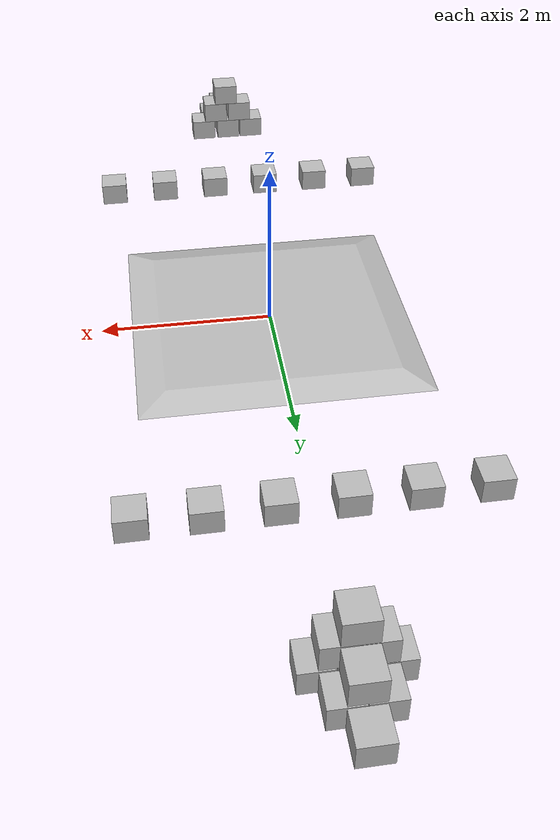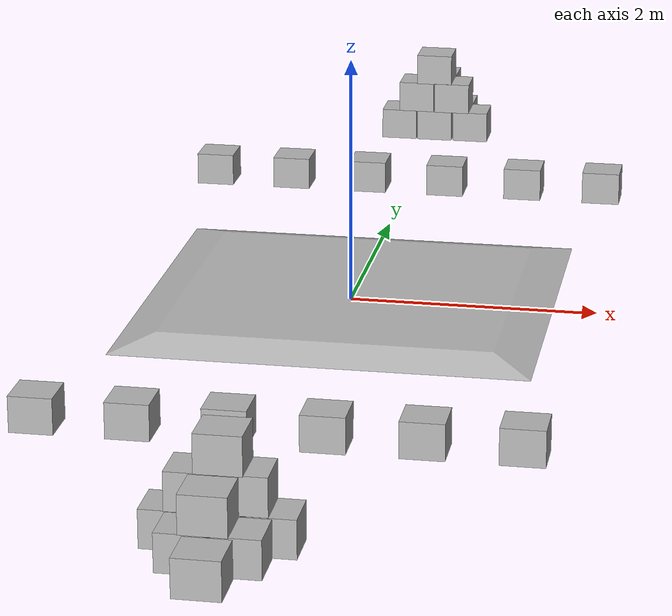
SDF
<sdf version='1.6'>
  <world name='default'>

    <light name='sun' type='directional'>
      <cast_shadows>1</cast_shadows>
      <pose>0 0 10 0 -0 0</pose>
      <diffuse>0.8 0.8 0.8 1</diffuse>
      <specular>0.2 0.2 0.2 1</specular>
      <attenuation>
        <range>1000</range>
        <constant>0.9</constant>
        <linear>0.01</linear>
        <quadratic>0.001</quadratic>
      </attenuation>
      <direction>-0.5 0.1 -0.9</direction>
    </light>
    <gravity>0 0 -9.8</gravity>
    <magnetic_field>6e-06 2.3e-05 -4.2e-05</magnetic_field>
    <atmosphere type='adiabatic'/>
    <physics name='default_physics' default='0' type='ode'>
      <max_step_size>0.001</max_step_size>
      <real_time_factor>1</real_time_factor>
      <!-- Adjust sim speed here -->
      <real_time_update_rate>1000</real_time_update_rate>
    </physics>
    <scene>
      <ambient>0.1 0.1 0.1 1</ambient>
      <background>0.7 0.7 0.7 1</background>
      <shadows>1</shadows>
    </scene>
    <wind/>
    <spherical_coordinates>
      <surface_model>EARTH_WGS84</surface_model>
      <latitude_deg>0</latitude_deg>
      <longitude_deg>0</longitude_deg>
      <elevation>0</elevation>
      <heading_deg>0</heading_deg>
    </spherical_coordinates>
    <light name='point_light_0' type='point'>
      <pose>0 -5 4 0 -0 0</pose>
      <diffuse>0.5 0.5 0.5 1</diffuse>
      <specular>0.1 0.1 0.1 1</specular>
      <attenuation>
        <range>20</range>
        <constant>0.5</constant>
        <linear>0.01</linear>
        <quadratic>0.001</quadratic>
      </attenuation>
      <cast_shadows>0</cast_shadows>
      <direction>0 0 -1</direction>
    </light>
    <light name='point_light_1' type='point'>
      <pose>0 5 4 0 -0 0</pose>
      <diffuse>0.5 0.5 0.5 1</diffuse>
      <specular>0.1 0.1 0.1 1</specular>
      <attenuation>
        <range>20</range>
        <constant>0.5</constant>
        <linear>0.01</linear>
        <quadratic>0.001</quadratic>
      </attenuation>
      <cast_shadows>0</cast_shadows>
      <direction>0 0 -1</direction>
    </light>

    <include>
      <name>frc2018_field</name>
      <uri>model://Gazebo2018/frc2018_field</uri>
      <pose>0 0 0 0 0 0</pose>
    </include>
    <include>
      <name>frc2018_cube_0</name>
      <uri>model://Gazebo2018/frc2018_cube</uri>
      <pose>-0.373569 -4.84169 0 0 -0 0</pose>
    </include>
    <include>
      <name>frc2018_cube_1</name>
      <uri>model://Gazebo2018/frc2018_cube</uri>
      <pose>-0.024527 -4.8416 0 0 -0 0</pose>
    </include>
    <include>
      <name>frc2018_cube_2</name>
      <uri>model://Gazebo2018/frc2018_cube</uri>
      <pose>0.349051 -4.84024 0 0 -0 0</pose>
    </include>
    <include>
      <name>frc2018_cube_3</name>
      <uri>model://Gazebo2018/frc2018_cube</uri>
      <pose>-0.189151 -5.18445 0 0 -0 0</pose>
    </include>
    <include>
      <name>frc2018_cube_4</name>
      <uri>model://Gazebo2018/frc2018_cube</uri>
      <pose>0.189151 -5.18445 0 0 -0 0</pose>
    </include>
    <include>
      <name>frc2018_cube_5</name>
      <uri>model://Gazebo2018/frc2018_cube</uri>
      <pose>0.005817 -5.53622 0 0 -0 0</pose>
    </include>
    <include>
      <name>frc2018_cube_6</name>
      <uri>model://Gazebo2018/frc2018_cube</uri>
      <pose>0.161782 -4.84 0.28 0 -0 0</pose>
    </include>
    <include>
      <name>frc2018_cube_7</name>
      <uri>model://Gazebo2018/frc2018_cube</uri>
      <pose>-0.2 -4.84654 0.278 0 -0 0</pose>
    </include>
    <include>
      <name>frc2018_cube_8</name>
      <uri>model://Gazebo2018/frc2018_cube</uri>
      <pose>-0.0274 -5.19091 0.278 0 -0 0</pose>
    </include>
    <include>
      <name>frc2018_cube_9</name>
      <uri>model://Gazebo2018/frc2018_cube</uri>
      <pose>0 -4.85 0.556 0 -0 0</pose>
    </include>
    <include>
      <name>frc2018_cube_10</name>
      <uri>model://Gazebo2018/frc2018_cube</uri>
      <pose>1.77 -3.07 0 0 -0 0</pose>
    </include>
    <include>
      <name>frc2018_cube_11</name>
      <uri>model://Gazebo2018/frc2018_cube</uri>
      <pose>-1.77 -3.07 0 0 -0 0</pose>
    </include>
    <include>
      <name>frc2018_cube_12</name>
      <uri>model://Gazebo2018/frc2018_cube</uri>
      <pose>1.062 -3.07 0 0 -0 0</pose>
    </include>
    <include>
      <name>frc2018_cube_13</name>
      <uri>model://Gazebo2018/frc2018_cube</uri>
      <pose>0.354 -3.07 0 0 -0 0</pose>
    </include>
    <include>
      <name>frc2018_cube_14</name>
      <uri>model://Gazebo2018/frc2018_cube</uri>
      <pose>-0.354 -3.07 0 0 -0 0</pose>
    </include>
    <include>
      <name>frc2018_cube_15</name>
      <uri>model://Gazebo2018/frc2018_cube</uri>
      <pose>-1.06 -3.07 0 0 -0 0</pose>
    </include>
    <include>
      <name>frc2018_cube_16</name>
      <uri>model://Gazebo2018/frc2018_cube</uri>
      <pose>0.005086 4.84839 0 0 -0 0</pose>
    </include>
    <include>
      <name>frc2018_cube_17</name>
      <uri>model://Gazebo2018/frc2018_cube</uri>
      <pose>-0.336893 4.85267 0 0 -0 0</pose>
    </include>
    <include>
      <name>frc2018_cube_18</name>
      <uri>model://Gazebo2018/frc2018_cube</uri>
      <pose>0.17 5.19186 0 0 -0 0</pose>
    </include>
    <include>
      <name>frc2018_cube_19</name>
      <uri>model://Gazebo2018/frc2018_cube</uri>
      <pose>-0.17 5.19023 0 0 -0 0</pose>
    </include>
    <include>
      <name>frc2018_cube_20</name>
      <uri>model://Gazebo2018/frc2018_cube</uri>
      <pose>0.009532 5.52902 0 0 -0 0</pose>
    </include>
    <include>
      <name>frc2018_cube_21</name>
      <uri>model://Gazebo2018/frc2018_cube</uri>
      <pose>0.17 4.83828 0.2794 0 -0 0</pose>
    </include>
    <include>
      <name>frc2018_cube_22</name>
      <uri>model://Gazebo2018/frc2018_cube</uri>
      <pose>-0.17 4.8465 0.2794 0 -0 0</pose>
    </include>
    <include>
      <name>frc2018_cube_23</name>
      <uri>model://Gazebo2018/frc2018_cube</uri>
      <pose>0.00339 5.17996 0.2794 0 -0 0</pose>
    </include>
    <include>
      <name>frc2018_cube_24</name>
      <uri>model://Gazebo2018/frc2018_cube</uri>
      <pose>0 4.84057 0.556 0 -0 0</pose>
    </include>
    <include>
      <name>frc2018_cube_25</name>
      <uri>model://Gazebo2018/frc2018_cube</uri>
      <pose>-1.77 3.07 0 0 -0 0</pose>
    </include>
    <include>
      <name>frc2018_cube_26</name>
      <uri>model://Gazebo2018/frc2018_cube</uri>
      <pose>1.77 3.07 0 0 -0 0</pose>
    </include>
    <include>
      <name>frc2018_cube_27</name>
      <uri>model://Gazebo2018/frc2018_cube</uri>
      <pose>1.06 3.07 0 0 -0 0</pose>
    </include>
    <include>
      <name>frc2018_cube_28</name>
      <uri>model://Gazebo2018/frc2018_cube</uri>
      <pose>-1.06 3.07 0 0 -0 0</pose>
    </include>
    <include>
      <name>frc2018_cube_29</name>
      <uri>model://Gazebo2018/frc2018_cube</uri>
      <pose>-0.354 3.07 0 0 -0 0</pose>
    </include>
    <include>
      <name>frc2018_cube_30</name>
      <uri>model://Gazebo2018/frc2018_cube</uri>
      <pose>0.354 3.07 0 0 -0 0</pose>
    </include>
    <include>
      <name>frc2018_cube_31</name>
      <uri>model://Gazebo2018/frc2018_cube</uri>
      <pose>0.349072 4.85162 0 0 -0 0</pose>
    </include>

    <gui fullscreen='0'>
      <camera name='user_camera'>
        <pose>12.7167 -9.20841 12.7427 0 0.693797 2.44101</pose>
        <view_controller>orbit</view_controller>
        <projection_type>perspective</projection_type>
      </camera>
    </gui>

  </world>
</sdf>

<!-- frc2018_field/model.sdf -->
<sdf version="1.5">
  <model name="frc2018_field">
    <static>true</static>
    <link name="field">

      <!-- Visual of the field -->
      <visual name="field_visual">
        <geometry>
          <mesh>
            <uri>model://Gazebo2018/frc2018_field/meshes/field.obj</uri>
          </mesh>
        </geometry>
      </visual>

      <!-- Collision geometries -->
      <collision name="floor_collision">
        <geometry>
          <plane>
            <normal>0 0 1</normal>
            <size>100 100</size>
          </plane>
        </geometry>
        <surface>
          <friction>
            <ode>
              <mu>100</mu>
              <mu2>50</mu2>
            </ode>
          </friction>
        </surface>
      </collision>
      <collision name='blue_wall_collision'>
        <pose>0 -8.245 1 0 0 0</pose>
        <geometry>
          <box>
            <size>6.75 0.05 2</size>
          </box>
        </geometry>
      </collision>
      <collision name='red_wall_collision'>
        <pose>0 8.245 1 0 0 0</pose>
        <geometry>
          <box>
            <size>6.75 0.05 2</size>
          </box>
        </geometry>
      </collision>
      <collision name='side1_wall_collision'>
        <pose>-4.13911 0 0.25 0 0 0</pose>
        <geometry>
          <box>
            <size>0.05 14.7 0.5</size>
          </box>
        </geometry>
      </collision>
      <collision name='side2_wall_collision'>
        <pose>4.13911 0 0.25 0 0 0</pose>
        <geometry>
          <box>
            <size>0.05 14.7 0.5</size>
          </box>
        </geometry>
      </collision>
      <collision name='blue_corner1_collision'>
        <pose>-3.76153 -7.78821 1 0 0 0.6719518</pose>
        <geometry>
          <box>
            <size>0.05 1.1 2</size>
          </box>
        </geometry>
      </collision>
      <collision name='blue_corner2_collision'>
        <pose>3.76153 -7.78821 1 0 0 -0.6719518</pose>
        <geometry>
          <box>
            <size>0.05 1.1 2</size>
          </box>
        </geometry>
      </collision>
      <collision name='red_corner1_collision'>
        <pose>-3.76153 7.78821 1 0 0 -0.6719518</pose>
        <geometry>
          <box>
            <size>0.05 1.1 2</size>
          </box>
        </geometry>
      </collision>
      <collision name='red_corner2_collision'>
        <pose>3.76153 7.78821 1 0 0 0.6719518</pose>
        <geometry>
          <box>
            <size>0.05 1.1 2</size>
          </box>
        </geometry>
      </collision>
      <collision name='blue_smallstep_left_collision'>
        <pose>-0.346418 -8.13736 -0.016684 -0.287855408 0.2458331158 -0.0650609876</pose>
        <geometry>
          <box>
            <size>0.2 0.2 0.025</size>
          </box>
        </geometry>
      </collision>
      <collision name='blue_smallstep_center_collision'>
        <pose>-0.746 -8.12854 0.006782 -0.270805287 0 0</pose>
        <geometry>
          <box>
            <size>0.61 0.2 0.025</size>
          </box>
        </geometry>
      </collision>
      <collision name='blue_smallstep_right_collision'>
        <pose>-1.14558 -8.13736 -0.016684  -0.287855408 -0.2458331158 0.0650609876</pose>
        <geometry>
          <box>
            <size>0.2 0.2 0.025</size>
          </box>
        </geometry>
      </collision>
      <collision name='red_smallstep_left_collision'>
        <pose>0.346418 8.13736 -0.016684 -0.287855408 0.2458331158 3.07653166599</pose>
        <geometry>
          <box>
            <size>0.2 0.2 0.025</size>
          </box>
        </geometry>
      </collision>
      <collision name='red_smallstep_center_collision'>
        <pose>0.746 8.12854 0.006782 -0.270805287 0 3.14159265359</pose>
        <geometry>
          <box>
            <size>0.61 0.2 0.025</size>
          </box>
        </geometry>
      </collision>
      <collision name='red_smallstep_right_collision'>
        <pose>1.14558 8.13736 -0.016684  -0.287855408 -0.2458331158 3.20665364119</pose>
        <geometry>
          <box>
            <size>0.2 0.2 0.025</size>
          </box>
        </geometry>
      </collision>
      <collision name='blue_switchwall_near_collision'>
        <pose>0 -4.65 0.223 0 0 0</pose>
        <geometry>
          <box>
            <size>3.9 0.05 0.5</size>
          </box>
        </geometry>
      </collision>
      <collision name='blue_switchwall_far_collision'>
        <pose>0 -3.27 0.223 0 0 0</pose>
        <geometry>
          <box>
            <size>3.9 0.05 0.5</size>
          </box>
        </geometry>
      </collision>
      <collision name='blue_switchwall_side1_collision'>
        <pose>-1.925 -3.96 0.223 0 0 0</pose>
        <geometry>
          <box>
            <size>0.05 1.33 0.5</size>
          </box>
        </geometry>
      </collision>
      <collision name='blue_switchwall_side2_collision'>
        <pose>1.925 -3.96 0.223 0 0 0</pose>
        <geometry>
          <box>
            <size>0.05 1.33 0.5</size>
          </box>
        </geometry>
      </collision>
      <collision name='red_switchwall_near_collision'>
        <pose>0 4.65 0.223 0 0 0</pose>
        <geometry>
          <box>
            <size>3.9 0.05 0.5</size>
          </box>
        </geometry>
      </collision>
      <collision name='red_switchwall_far_collision'>
        <pose>0 3.27 0.223 0 0 0</pose>
        <geometry>
          <box>
            <size>3.9 0.05 0.5</size>
          </box>
        </geometry>
      </collision>
      <collision name='red_switchwall_side1_collision'>
        <pose>-1.925 3.96 0.223 0 0 0</pose>
        <geometry>
          <box>
            <size>0.05 1.33 0.5</size>
          </box>
        </geometry>
      </collision>
      <collision name='red_switchwall_side2_collision'>
        <pose>1.925 3.96 0.223 0 0 0</pose>
        <geometry>
          <box>
            <size>0.05 1.33 0.5</size>
          </box>
        </geometry>
      </collision>
      <collision name='tower_side1_collision'>
        <pose>-0.237202 0 -0.071719 0 -0.698131701 0</pose>
        <geometry>
          <box>
            <size>2 0.44 2</size>
          </box>
        </geometry>
      </collision>
      <collision name='tower_side2_collision'>
        <pose>0.237202 0 -0.071719 0 0.698131701 0</pose>
        <geometry>
          <box>
            <size>2 0.44 2</size>
          </box>
        </geometry>
      </collision>
      <collision name='tower_bluecenter_collision'>
        <pose>0 -0.25 1.07 0 0 0</pose>
        <geometry>
          <box>
            <size>0.43 0.05 2.14</size>
          </box>
        </geometry>
      </collision>
      <collision name='tower_redcenter_collision'>
        <pose>0 0.25 1.07 0 0 0</pose>
        <geometry>
          <box>
            <size>0.43 0.05 2.14</size>
          </box>
        </geometry>
      </collision>
      <collision name='tower_step_collision'>
        <pose>0 0 0 0 0 0</pose>
        <geometry>
          <mesh>
            <uri>model://Gazebo2018/frc2018_field/meshes/field_centerstep_collision.obj</uri>
          </mesh>
        </geometry>
      </collision>

    </link>
  </model>
</sdf>

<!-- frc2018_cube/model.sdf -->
<sdf version="1.5">
  <model name="frc2018_cube">
    <static>false</static>
    <link name="cube">

      <!-- Visual of the field -->
      <visual name="cube_visual">
        <geometry>
          <mesh>
            <uri>model://Gazebo2018/frc2018_cube/meshes/cube.obj</uri>
          </mesh>
        </geometry>
      </visual>

      <!-- Collision geometries -->
      <collision name='cube_collision'>
        <pose>0 0 .14 0 0 0</pose>
        <geometry>
          <box>
            <size>.3302 .3302 .2794</size>
          </box>
        </geometry>
      </collision>

    </link>
  </model>
</sdf>
